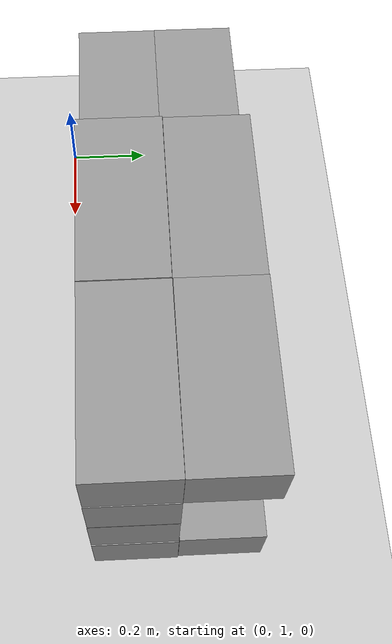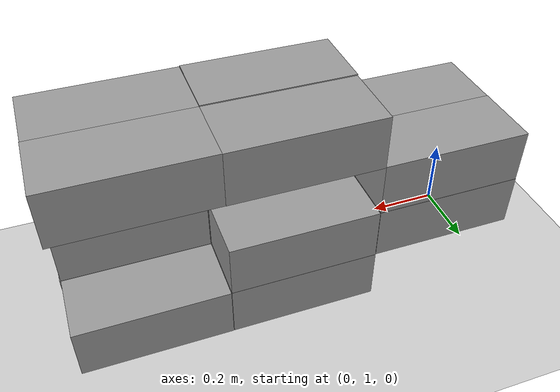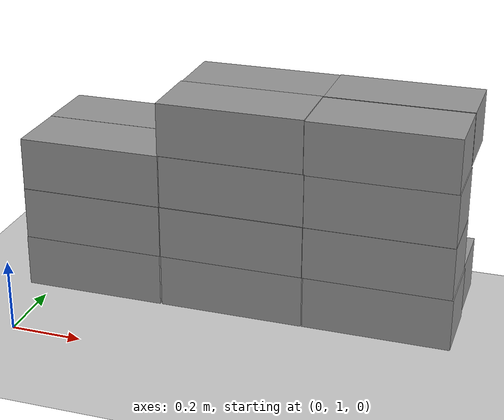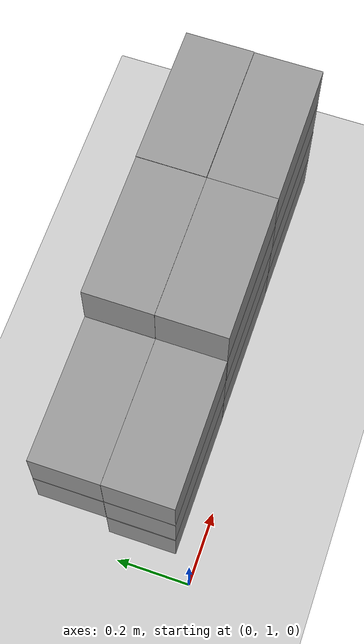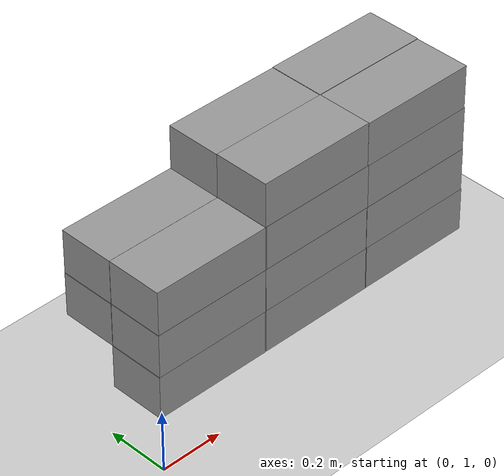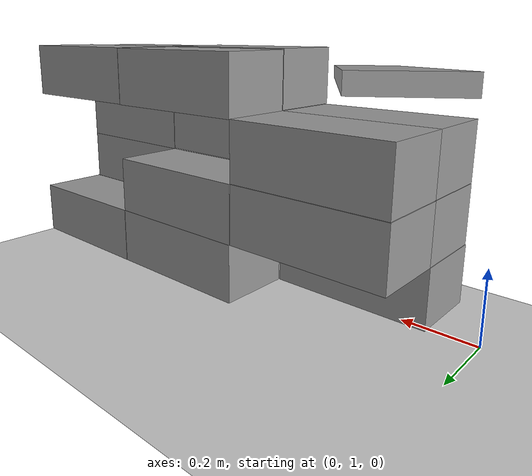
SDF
<sdf version="1.7">
 <world name="default">
  <model name="ground_plane">
   <static>1</static>
   <link name="link">
    <collision name="collision">
     <geometry><plane><normal>0 0 1</normal><size>100 100</size></plane></geometry>
     <surface>
      <contact><collide_bitmask>65535</collide_bitmask></contact>
      <friction><ode><mu>100</mu><mu2>50</mu2></ode></friction>
     </surface>
    </collision>
    <visual name="visual">
     <cast_shadows>0</cast_shadows>
     <geometry><plane><normal>0 0 1</normal><size>100 100</size></plane></geometry>
     <material>
      <script><uri>file://media/materials/scripts/gazebo.material</uri><name>Gazebo/Grey</name></script>
     </material>
    </visual>
   </link>
  </model>
  <model name="box_38_18_14">
   <link name="link_0">
    <inertial>
     <mass>2.5</mass>
     <inertia>
      <ixx>0.0108332</ixx>
      <ixy>0</ixy>
      <ixz>0</ixz>
      <iyy>0.0341665</iyy>
      <iyz>0</iyz>
      <izz>0.0368332</izz>
     </inertia>
    </inertial>
    <visual name="visual">
     <geometry><box><size>0.38 0.18 0.14</size></box></geometry>
     <material>
      <lighting>1</lighting>
      <script><uri>file://media/materials/scripts/gazebo.material</uri><name>Gazebo/Grey</name></script>
      <shader type="pixel"><normal_map>__default__</normal_map></shader>
      <ambient>0.3 0.3 0.3 1</ambient>
      <diffuse>0.7 0.7 0.7 1</diffuse>
      <specular>0.01 0.01 0.01 1</specular>
      <emissive>0 0 0 1</emissive>
     </material>
    </visual>
    <collision name="collision">
     <geometry><box><size>0.38 0.18 0.14</size></box></geometry>
     <surface>
      <friction>
       <ode><mu>0.6</mu><mu2>0.6</mu2><fdir1>0 0 0</fdir1><slip1>0</slip1><slip2>0</slip2></ode>
       <torsional>
        <coefficient>1</coefficient>
        <patch_radius>0</patch_radius>
        <surface_radius>0</surface_radius>
        <use_patch_radius>1</use_patch_radius>
        <ode><slip>0</slip></ode>
       </torsional>
      </friction>
      <bounce><restitution_coefficient>0</restitution_coefficient><threshold>1e+06</threshold></bounce>
      <contact>
       <collide_without_contact>0</collide_without_contact>
       <collide_without_contact_bitmask>1</collide_without_contact_bitmask>
       <collide_bitmask>1</collide_bitmask>
       <ode>
        <soft_cfm>0</soft_cfm>
        <soft_erp>0.2</soft_erp>
        <kp>1e+13</kp>
        <kd>1</kd>
        <max_vel>0.01</max_vel>
        <min_depth>0.01</min_depth>
       </ode>
       <bullet>
        <split_impulse>1</split_impulse>
        <split_impulse_penetration_threshold>-0.01</split_impulse_penetration_threshold>
        <soft_cfm>0</soft_cfm>
        <soft_erp>0.2</soft_erp>
        <kp>1e+13</kp>
        <kd>1</kd>
       </bullet>
      </contact>
     </surface>
    </collision>
   </link>
   <static>0</static>
   <pose>0.99069 1.1403 0.611576 0.000484 0.001138 0.001894</pose>
  </model>
  <model name="box_38_18_14_0">
   <link name="link_0">
    <inertial>
     <mass>2.5</mass>
     <inertia>
      <ixx>0.0108332</ixx>
      <ixy>0</ixy>
      <ixz>0</ixz>
      <iyy>0.0341665</iyy>
      <iyz>0</iyz>
      <izz>0.0368332</izz>
     </inertia>
    </inertial>
    <visual name="visual">
     <geometry><box><size>0.38 0.18 0.14</size></box></geometry>
     <material>
      <lighting>1</lighting>
      <script><uri>file://media/materials/scripts/gazebo.material</uri><name>Gazebo/Grey</name></script>
      <shader type="pixel"><normal_map>__default__</normal_map></shader>
      <ambient>0.3 0.3 0.3 1</ambient>
      <diffuse>0.7 0.7 0.7 1</diffuse>
      <specular>0.01 0.01 0.01 1</specular>
      <emissive>0 0 0 1</emissive>
     </material>
    </visual>
    <collision name="collision">
     <geometry><box><size>0.38 0.18 0.14</size></box></geometry>
     <surface>
      <friction>
       <ode><mu>0.6</mu><mu2>0.6</mu2><fdir1>0 0 0</fdir1><slip1>0</slip1><slip2>0</slip2></ode>
       <torsional>
        <coefficient>1</coefficient>
        <patch_radius>0</patch_radius>
        <surface_radius>0</surface_radius>
        <use_patch_radius>1</use_patch_radius>
        <ode><slip>0</slip></ode>
       </torsional>
      </friction>
      <bounce><restitution_coefficient>0</restitution_coefficient><threshold>1e+06</threshold></bounce>
      <contact>
       <collide_without_contact>0</collide_without_contact>
       <collide_without_contact_bitmask>1</collide_without_contact_bitmask>
       <collide_bitmask>1</collide_bitmask>
       <ode>
        <soft_cfm>0</soft_cfm>
        <soft_erp>0.2</soft_erp>
        <kp>1e+13</kp>
        <kd>1</kd>
        <max_vel>0.01</max_vel>
        <min_depth>0.01</min_depth>
       </ode>
       <bullet>
        <split_impulse>1</split_impulse>
        <split_impulse_penetration_threshold>-0.01</split_impulse_penetration_threshold>
        <soft_cfm>0</soft_cfm>
        <soft_erp>0.2</soft_erp>
        <kp>1e+13</kp>
        <kd>1</kd>
       </bullet>
      </contact>
     </surface>
    </collision>
   </link>
   <static>0</static>
   <pose>0.610372 1.13954 0.614013 0.0002 0.000296 0.000292</pose>
  </model>
  <model name="box_38_18_14_1">
   <link name="link_0">
    <inertial>
     <mass>2.5</mass>
     <inertia>
      <ixx>0.0108332</ixx>
      <ixy>0</ixy>
      <ixz>0</ixz>
      <iyy>0.0341665</iyy>
      <iyz>0</iyz>
      <izz>0.0368332</izz>
     </inertia>
    </inertial>
    <visual name="visual">
     <geometry><box><size>0.38 0.18 0.14</size></box></geometry>
     <material>
      <lighting>1</lighting>
      <script><uri>file://media/materials/scripts/gazebo.material</uri><name>Gazebo/Grey</name></script>
      <shader type="pixel"><normal_map>__default__</normal_map></shader>
      <ambient>0.3 0.3 0.3 1</ambient>
      <diffuse>0.7 0.7 0.7 1</diffuse>
      <specular>0.01 0.01 0.01 1</specular>
      <emissive>0 0 0 1</emissive>
     </material>
    </visual>
    <collision name="collision">
     <geometry><box><size>0.38 0.18 0.14</size></box></geometry>
     <surface>
      <friction>
       <ode><mu>0.6</mu><mu2>0.6</mu2><fdir1>0 0 0</fdir1><slip1>0</slip1><slip2>0</slip2></ode>
       <torsional>
        <coefficient>1</coefficient>
        <patch_radius>0</patch_radius>
        <surface_radius>0</surface_radius>
        <use_patch_radius>1</use_patch_radius>
        <ode><slip>0</slip></ode>
       </torsional>
      </friction>
      <bounce><restitution_coefficient>0</restitution_coefficient><threshold>1e+06</threshold></bounce>
      <contact>
       <collide_without_contact>0</collide_without_contact>
       <collide_without_contact_bitmask>1</collide_without_contact_bitmask>
       <collide_bitmask>1</collide_bitmask>
       <ode>
        <soft_cfm>0</soft_cfm>
        <soft_erp>0.2</soft_erp>
        <kp>1e+13</kp>
        <kd>1</kd>
        <max_vel>0.01</max_vel>
        <min_depth>0.01</min_depth>
       </ode>
       <bullet>
        <split_impulse>1</split_impulse>
        <split_impulse_penetration_threshold>-0.01</split_impulse_penetration_threshold>
        <soft_cfm>0</soft_cfm>
        <soft_erp>0.2</soft_erp>
        <kp>1e+13</kp>
        <kd>1</kd>
       </bullet>
      </contact>
     </surface>
    </collision>
   </link>
   <static>1</static>
   <pose>0.995595 1.14055 0.192003 -2.4e-05 -3.2e-05 -0.000547</pose>
  </model>
  <model name="box_38_18_14_2">
   <link name="link_0">
    <inertial>
     <mass>2.5</mass>
     <inertia>
      <ixx>0.0108332</ixx>
      <ixy>0</ixy>
      <ixz>0</ixz>
      <iyy>0.0341665</iyy>
      <iyz>0</iyz>
      <izz>0.0368332</izz>
     </inertia>
    </inertial>
    <visual name="visual">
     <geometry><box><size>0.38 0.18 0.14</size></box></geometry>
     <material>
      <lighting>1</lighting>
      <script><uri>file://media/materials/scripts/gazebo.material</uri><name>Gazebo/Grey</name></script>
      <shader type="pixel"><normal_map>__default__</normal_map></shader>
      <ambient>0.3 0.3 0.3 1</ambient>
      <diffuse>0.7 0.7 0.7 1</diffuse>
      <specular>0.01 0.01 0.01 1</specular>
      <emissive>0 0 0 1</emissive>
     </material>
    </visual>
    <collision name="collision">
     <geometry><box><size>0.38 0.18 0.14</size></box></geometry>
     <surface>
      <friction>
       <ode><mu>0.6</mu><mu2>0.6</mu2><fdir1>0 0 0</fdir1><slip1>0</slip1><slip2>0</slip2></ode>
       <torsional>
        <coefficient>1</coefficient>
        <patch_radius>0</patch_radius>
        <surface_radius>0</surface_radius>
        <use_patch_radius>1</use_patch_radius>
        <ode><slip>0</slip></ode>
       </torsional>
      </friction>
      <bounce><restitution_coefficient>0</restitution_coefficient><threshold>1e+06</threshold></bounce>
      <contact>
       <collide_without_contact>0</collide_without_contact>
       <collide_without_contact_bitmask>1</collide_without_contact_bitmask>
       <collide_bitmask>1</collide_bitmask>
       <ode>
        <soft_cfm>0</soft_cfm>
        <soft_erp>0.2</soft_erp>
        <kp>1e+13</kp>
        <kd>1</kd>
        <max_vel>0.01</max_vel>
        <min_depth>0.01</min_depth>
       </ode>
       <bullet>
        <split_impulse>1</split_impulse>
        <split_impulse_penetration_threshold>-0.01</split_impulse_penetration_threshold>
        <soft_cfm>0</soft_cfm>
        <soft_erp>0.2</soft_erp>
        <kp>1e+13</kp>
        <kd>1</kd>
       </bullet>
      </contact>
     </surface>
    </collision>
   </link>
   <static>1</static>
   <pose>0.612926 1.14008 0.191991 3.5e-05 -1.8e-05 0.000435</pose>
  </model>
  <model name="box_38_18_14_3">
   <link name="link_0">
    <inertial>
     <mass>2.5</mass>
     <inertia>
      <ixx>0.0108332</ixx>
      <ixy>0</ixy>
      <ixz>0</ixz>
      <iyy>0.0341665</iyy>
      <iyz>0</iyz>
      <izz>0.0368332</izz>
     </inertia>
    </inertial>
    <visual name="visual">
     <geometry><box><size>0.38 0.18 0.14</size></box></geometry>
     <material>
      <lighting>1</lighting>
      <script><uri>file://media/materials/scripts/gazebo.material</uri><name>Gazebo/Grey</name></script>
      <shader type="pixel"><normal_map>__default__</normal_map></shader>
      <ambient>0.3 0.3 0.3 1</ambient>
      <diffuse>0.7 0.7 0.7 1</diffuse>
      <specular>0.01 0.01 0.01 1</specular>
      <emissive>0 0 0 1</emissive>
     </material>
    </visual>
    <collision name="collision">
     <geometry><box><size>0.38 0.18 0.14</size></box></geometry>
     <surface>
      <friction>
       <ode><mu>0.6</mu><mu2>0.6</mu2><fdir1>0 0 0</fdir1><slip1>0</slip1><slip2>0</slip2></ode>
       <torsional>
        <coefficient>1</coefficient>
        <patch_radius>0</patch_radius>
        <surface_radius>0</surface_radius>
        <use_patch_radius>1</use_patch_radius>
        <ode><slip>0</slip></ode>
       </torsional>
      </friction>
      <bounce><restitution_coefficient>0</restitution_coefficient><threshold>1e+06</threshold></bounce>
      <contact>
       <collide_without_contact>0</collide_without_contact>
       <collide_without_contact_bitmask>1</collide_without_contact_bitmask>
       <collide_bitmask>1</collide_bitmask>
       <ode>
        <soft_cfm>0</soft_cfm>
        <soft_erp>0.2</soft_erp>
        <kp>1e+13</kp>
        <kd>1</kd>
        <max_vel>0.01</max_vel>
        <min_depth>0.01</min_depth>
       </ode>
       <bullet>
        <split_impulse>1</split_impulse>
        <split_impulse_penetration_threshold>-0.01</split_impulse_penetration_threshold>
        <soft_cfm>0</soft_cfm>
        <soft_erp>0.2</soft_erp>
        <kp>1e+13</kp>
        <kd>1</kd>
       </bullet>
      </contact>
     </surface>
    </collision>
   </link>
   <static>1</static>
   <pose>0.229172 1.13951 0.191983 2.7e-05 -2e-05 5e-06</pose>
  </model>
  <model name="box_38_18_14_4">
   <link name="link_0">
    <inertial>
     <mass>2.5</mass>
     <inertia>
      <ixx>0.0108332</ixx>
      <ixy>0</ixy>
      <ixz>0</ixz>
      <iyy>0.0341665</iyy>
      <iyz>0</iyz>
      <izz>0.0368332</izz>
     </inertia>
    </inertial>
    <visual name="visual">
     <geometry><box><size>0.38 0.18 0.14</size></box></geometry>
     <material>
      <lighting>1</lighting>
      <script><uri>file://media/materials/scripts/gazebo.material</uri><name>Gazebo/Grey</name></script>
      <shader type="pixel"><normal_map>__default__</normal_map></shader>
      <ambient>0.3 0.3 0.3 1</ambient>
      <diffuse>0.7 0.7 0.7 1</diffuse>
      <specular>0.01 0.01 0.01 1</specular>
      <emissive>0 0 0 1</emissive>
     </material>
    </visual>
    <collision name="collision">
     <geometry><box><size>0.38 0.18 0.14</size></box></geometry>
     <surface>
      <friction>
       <ode><mu>0.6</mu><mu2>0.6</mu2><fdir1>0 0 0</fdir1><slip1>0</slip1><slip2>0</slip2></ode>
       <torsional>
        <coefficient>1</coefficient>
        <patch_radius>0</patch_radius>
        <surface_radius>0</surface_radius>
        <use_patch_radius>1</use_patch_radius>
        <ode><slip>0</slip></ode>
       </torsional>
      </friction>
      <bounce><restitution_coefficient>0</restitution_coefficient><threshold>1e+06</threshold></bounce>
      <contact>
       <collide_without_contact>0</collide_without_contact>
       <collide_without_contact_bitmask>1</collide_without_contact_bitmask>
       <collide_bitmask>1</collide_bitmask>
       <ode>
        <soft_cfm>0</soft_cfm>
        <soft_erp>0.2</soft_erp>
        <kp>1e+13</kp>
        <kd>1</kd>
        <max_vel>0.01</max_vel>
        <min_depth>0.01</min_depth>
       </ode>
       <bullet>
        <split_impulse>1</split_impulse>
        <split_impulse_penetration_threshold>-0.01</split_impulse_penetration_threshold>
        <soft_cfm>0</soft_cfm>
        <soft_erp>0.2</soft_erp>
        <kp>1e+13</kp>
        <kd>1</kd>
       </bullet>
      </contact>
     </surface>
    </collision>
   </link>
   <static>1</static>
   <pose>0.992564 1.32147 0.192009 -2.4e-05 -1.9e-05 -1.8e-05</pose>
  </model>
  <model name="box_38_18_14_5">
   <link name="link_0">
    <inertial>
     <mass>2.5</mass>
     <inertia>
      <ixx>0.0108332</ixx>
      <ixy>0</ixy>
      <ixz>0</ixz>
      <iyy>0.0341665</iyy>
      <iyz>0</iyz>
      <izz>0.0368332</izz>
     </inertia>
    </inertial>
    <visual name="visual">
     <geometry><box><size>0.38 0.18 0.14</size></box></geometry>
     <material>
      <lighting>1</lighting>
      <script><uri>file://media/materials/scripts/gazebo.material</uri><name>Gazebo/Grey</name></script>
      <shader type="pixel"><normal_map>__default__</normal_map></shader>
      <ambient>0.3 0.3 0.3 1</ambient>
      <diffuse>0.7 0.7 0.7 1</diffuse>
      <specular>0.01 0.01 0.01 1</specular>
      <emissive>0 0 0 1</emissive>
     </material>
    </visual>
    <collision name="collision">
     <geometry><box><size>0.38 0.18 0.14</size></box></geometry>
     <surface>
      <friction>
       <ode><mu>0.6</mu><mu2>0.6</mu2><fdir1>0 0 0</fdir1><slip1>0</slip1><slip2>0</slip2></ode>
       <torsional>
        <coefficient>1</coefficient>
        <patch_radius>0</patch_radius>
        <surface_radius>0</surface_radius>
        <use_patch_radius>1</use_patch_radius>
        <ode><slip>0</slip></ode>
       </torsional>
      </friction>
      <bounce><restitution_coefficient>0</restitution_coefficient><threshold>1e+06</threshold></bounce>
      <contact>
       <collide_without_contact>0</collide_without_contact>
       <collide_without_contact_bitmask>1</collide_without_contact_bitmask>
       <collide_bitmask>1</collide_bitmask>
       <ode>
        <soft_cfm>0</soft_cfm>
        <soft_erp>0.2</soft_erp>
        <kp>1e+13</kp>
        <kd>1</kd>
        <max_vel>0.01</max_vel>
        <min_depth>0.01</min_depth>
       </ode>
       <bullet>
        <split_impulse>1</split_impulse>
        <split_impulse_penetration_threshold>-0.01</split_impulse_penetration_threshold>
        <soft_cfm>0</soft_cfm>
        <soft_erp>0.2</soft_erp>
        <kp>1e+13</kp>
        <kd>1</kd>
       </bullet>
      </contact>
     </surface>
    </collision>
   </link>
   <static>1</static>
   <pose>0.61137 1.32116 0.191996 -1e-06 -2.4e-05 -0.000217</pose>
  </model>
  <model name="box_38_18_14_13">
   <link name="link_0">
    <inertial>
     <mass>2.5</mass>
     <inertia>
      <ixx>0.0108332</ixx>
      <ixy>0</ixy>
      <ixz>0</ixz>
      <iyy>0.0341665</iyy>
      <iyz>0</iyz>
      <izz>0.0368332</izz>
     </inertia>
    </inertial>
    <visual name="visual">
     <geometry><box><size>0.38 0.18 0.14</size></box></geometry>
     <material>
      <lighting>1</lighting>
      <script><uri>file://media/materials/scripts/gazebo.material</uri><name>Gazebo/Grey</name></script>
      <shader type="pixel"><normal_map>__default__</normal_map></shader>
      <ambient>0.3 0.3 0.3 1</ambient>
      <diffuse>0.7 0.7 0.7 1</diffuse>
      <specular>0.01 0.01 0.01 1</specular>
      <emissive>0 0 0 1</emissive>
     </material>
    </visual>
    <collision name="collision">
     <geometry><box><size>0.38 0.18 0.14</size></box></geometry>
     <surface>
      <friction>
       <ode><mu>0.6</mu><mu2>0.6</mu2><fdir1>0 0 0</fdir1><slip1>0</slip1><slip2>0</slip2></ode>
       <torsional>
        <coefficient>1</coefficient>
        <patch_radius>0</patch_radius>
        <surface_radius>0</surface_radius>
        <use_patch_radius>1</use_patch_radius>
        <ode><slip>0</slip></ode>
       </torsional>
      </friction>
      <bounce><restitution_coefficient>0</restitution_coefficient><threshold>1e+06</threshold></bounce>
      <contact>
       <collide_without_contact>0</collide_without_contact>
       <collide_without_contact_bitmask>1</collide_without_contact_bitmask>
       <collide_bitmask>1</collide_bitmask>
       <ode>
        <soft_cfm>0</soft_cfm>
        <soft_erp>0.2</soft_erp>
        <kp>1e+13</kp>
        <kd>1</kd>
        <max_vel>0.01</max_vel>
        <min_depth>0.01</min_depth>
       </ode>
       <bullet>
        <split_impulse>1</split_impulse>
        <split_impulse_penetration_threshold>-0.01</split_impulse_penetration_threshold>
        <soft_cfm>0</soft_cfm>
        <soft_erp>0.2</soft_erp>
        <kp>1e+13</kp>
        <kd>1</kd>
       </bullet>
      </contact>
     </surface>
    </collision>
   </link>
   <static>1</static>
   <pose>0.993083 1.13999 0.33195 0.000539 -3.4e-05 7.4e-05</pose>
  </model>
  <model name="box_38_18_14_14">
   <link name="link_0">
    <inertial>
     <mass>2.5</mass>
     <inertia>
      <ixx>0.0108332</ixx>
      <ixy>0</ixy>
      <ixz>0</ixz>
      <iyy>0.0341665</iyy>
      <iyz>0</iyz>
      <izz>0.0368332</izz>
     </inertia>
    </inertial>
    <visual name="visual">
     <geometry><box><size>0.38 0.18 0.14</size></box></geometry>
     <material>
      <lighting>1</lighting>
      <script><uri>file://media/materials/scripts/gazebo.material</uri><name>Gazebo/Grey</name></script>
      <shader type="pixel"><normal_map>__default__</normal_map></shader>
      <ambient>0.3 0.3 0.3 1</ambient>
      <diffuse>0.7 0.7 0.7 1</diffuse>
      <specular>0.01 0.01 0.01 1</specular>
      <emissive>0 0 0 1</emissive>
     </material>
    </visual>
    <collision name="collision">
     <geometry><box><size>0.38 0.18 0.14</size></box></geometry>
     <surface>
      <friction>
       <ode><mu>0.6</mu><mu2>0.6</mu2><fdir1>0 0 0</fdir1><slip1>0</slip1><slip2>0</slip2></ode>
       <torsional>
        <coefficient>1</coefficient>
        <patch_radius>0</patch_radius>
        <surface_radius>0</surface_radius>
        <use_patch_radius>1</use_patch_radius>
        <ode><slip>0</slip></ode>
       </torsional>
      </friction>
      <bounce><restitution_coefficient>0</restitution_coefficient><threshold>1e+06</threshold></bounce>
      <contact>
       <collide_without_contact>0</collide_without_contact>
       <collide_without_contact_bitmask>1</collide_without_contact_bitmask>
       <collide_bitmask>1</collide_bitmask>
       <ode>
        <soft_cfm>0</soft_cfm>
        <soft_erp>0.2</soft_erp>
        <kp>1e+13</kp>
        <kd>1</kd>
        <max_vel>0.01</max_vel>
        <min_depth>0.01</min_depth>
       </ode>
       <bullet>
        <split_impulse>1</split_impulse>
        <split_impulse_penetration_threshold>-0.01</split_impulse_penetration_threshold>
        <soft_cfm>0</soft_cfm>
        <soft_erp>0.2</soft_erp>
        <kp>1e+13</kp>
        <kd>1</kd>
       </bullet>
      </contact>
     </surface>
    </collision>
   </link>
   <static>1</static>
   <pose>0.612096 1.13996 0.331957 0.000133 0.00021 -0.000244</pose>
  </model>
  <model name="box_38_18_14_15">
   <link name="link_0">
    <inertial>
     <mass>2.5</mass>
     <inertia>
      <ixx>0.0108332</ixx>
      <ixy>0</ixy>
      <ixz>0</ixz>
      <iyy>0.0341665</iyy>
      <iyz>0</iyz>
      <izz>0.0368332</izz>
     </inertia>
    </inertial>
    <visual name="visual">
     <geometry><box><size>0.38 0.18 0.14</size></box></geometry>
     <material>
      <lighting>1</lighting>
      <script><uri>file://media/materials/scripts/gazebo.material</uri><name>Gazebo/Grey</name></script>
      <shader type="pixel"><normal_map>__default__</normal_map></shader>
      <ambient>0.3 0.3 0.3 1</ambient>
      <diffuse>0.7 0.7 0.7 1</diffuse>
      <specular>0.01 0.01 0.01 1</specular>
      <emissive>0 0 0 1</emissive>
     </material>
    </visual>
    <collision name="collision">
     <geometry><box><size>0.38 0.18 0.14</size></box></geometry>
     <surface>
      <friction>
       <ode><mu>0.6</mu><mu2>0.6</mu2><fdir1>0 0 0</fdir1><slip1>0</slip1><slip2>0</slip2></ode>
       <torsional>
        <coefficient>1</coefficient>
        <patch_radius>0</patch_radius>
        <surface_radius>0</surface_radius>
        <use_patch_radius>1</use_patch_radius>
        <ode><slip>0</slip></ode>
       </torsional>
      </friction>
      <bounce><restitution_coefficient>0</restitution_coefficient><threshold>1e+06</threshold></bounce>
      <contact>
       <collide_without_contact>0</collide_without_contact>
       <collide_without_contact_bitmask>1</collide_without_contact_bitmask>
       <collide_bitmask>1</collide_bitmask>
       <ode>
        <soft_cfm>0</soft_cfm>
        <soft_erp>0.2</soft_erp>
        <kp>1e+13</kp>
        <kd>1</kd>
        <max_vel>0.01</max_vel>
        <min_depth>0.01</min_depth>
       </ode>
       <bullet>
        <split_impulse>1</split_impulse>
        <split_impulse_penetration_threshold>-0.01</split_impulse_penetration_threshold>
        <soft_cfm>0</soft_cfm>
        <soft_erp>0.2</soft_erp>
        <kp>1e+13</kp>
        <kd>1</kd>
       </bullet>
      </contact>
     </surface>
    </collision>
   </link>
   <static>1</static>
   <pose>0.230627 1.13961 0.331973 3e-05 -6.7e-05 6.3e-05</pose>
  </model>
  <model name="box_38_18_14_16">
   <link name="link_0">
    <inertial>
     <mass>2.5</mass>
     <inertia>
      <ixx>0.0108332</ixx>
      <ixy>0</ixy>
      <ixz>0</ixz>
      <iyy>0.0341665</iyy>
      <iyz>0</iyz>
      <izz>0.0368332</izz>
     </inertia>
    </inertial>
    <visual name="visual">
     <geometry><box><size>0.38 0.18 0.14</size></box></geometry>
     <material>
      <lighting>1</lighting>
      <script><uri>file://media/materials/scripts/gazebo.material</uri><name>Gazebo/Grey</name></script>
      <shader type="pixel"><normal_map>__default__</normal_map></shader>
      <ambient>0.3 0.3 0.3 1</ambient>
      <diffuse>0.7 0.7 0.7 1</diffuse>
      <specular>0.01 0.01 0.01 1</specular>
      <emissive>0 0 0 1</emissive>
     </material>
    </visual>
    <collision name="collision">
     <geometry><box><size>0.38 0.18 0.14</size></box></geometry>
     <surface>
      <friction>
       <ode><mu>0.6</mu><mu2>0.6</mu2><fdir1>0 0 0</fdir1><slip1>0</slip1><slip2>0</slip2></ode>
       <torsional>
        <coefficient>1</coefficient>
        <patch_radius>0</patch_radius>
        <surface_radius>0</surface_radius>
        <use_patch_radius>1</use_patch_radius>
        <ode><slip>0</slip></ode>
       </torsional>
      </friction>
      <bounce><restitution_coefficient>0</restitution_coefficient><threshold>1e+06</threshold></bounce>
      <contact>
       <collide_without_contact>0</collide_without_contact>
       <collide_without_contact_bitmask>1</collide_without_contact_bitmask>
       <collide_bitmask>1</collide_bitmask>
       <ode>
        <soft_cfm>0</soft_cfm>
        <soft_erp>0.2</soft_erp>
        <kp>1e+13</kp>
        <kd>1</kd>
        <max_vel>0.01</max_vel>
        <min_depth>0.01</min_depth>
       </ode>
       <bullet>
        <split_impulse>1</split_impulse>
        <split_impulse_penetration_threshold>-0.01</split_impulse_penetration_threshold>
        <soft_cfm>0</soft_cfm>
        <soft_erp>0.2</soft_erp>
        <kp>1e+13</kp>
        <kd>1</kd>
       </bullet>
      </contact>
     </surface>
    </collision>
   </link>
   <static>1</static>
   <pose>0.229833 1.31971 0.33198 2.8e-05 -3e-06 -0.000162</pose>
  </model>
  <model name="box_38_18_14_17">
   <link name="link_0">
    <inertial>
     <mass>2.5</mass>
     <inertia>
      <ixx>0.0108332</ixx>
      <ixy>0</ixy>
      <ixz>0</ixz>
      <iyy>0.0341665</iyy>
      <iyz>0</iyz>
      <izz>0.0368332</izz>
     </inertia>
    </inertial>
    <visual name="visual">
     <geometry><box><size>0.38 0.18 0.14</size></box></geometry>
     <material>
      <lighting>1</lighting>
      <script><uri>file://media/materials/scripts/gazebo.material</uri><name>Gazebo/Grey</name></script>
      <shader type="pixel"><normal_map>__default__</normal_map></shader>
      <ambient>0.3 0.3 0.3 1</ambient>
      <diffuse>0.7 0.7 0.7 1</diffuse>
      <specular>0.01 0.01 0.01 1</specular>
      <emissive>0 0 0 1</emissive>
     </material>
    </visual>
    <collision name="collision">
     <geometry><box><size>0.38 0.18 0.14</size></box></geometry>
     <surface>
      <friction>
       <ode><mu>0.6</mu><mu2>0.6</mu2><fdir1>0 0 0</fdir1><slip1>0</slip1><slip2>0</slip2></ode>
       <torsional>
        <coefficient>1</coefficient>
        <patch_radius>0</patch_radius>
        <surface_radius>0</surface_radius>
        <use_patch_radius>1</use_patch_radius>
        <ode><slip>0</slip></ode>
       </torsional>
      </friction>
      <bounce><restitution_coefficient>0</restitution_coefficient><threshold>1e+06</threshold></bounce>
      <contact>
       <collide_without_contact>0</collide_without_contact>
       <collide_without_contact_bitmask>1</collide_without_contact_bitmask>
       <collide_bitmask>1</collide_bitmask>
       <ode>
        <soft_cfm>0</soft_cfm>
        <soft_erp>0.2</soft_erp>
        <kp>1e+13</kp>
        <kd>1</kd>
        <max_vel>0.01</max_vel>
        <min_depth>0.01</min_depth>
       </ode>
       <bullet>
        <split_impulse>1</split_impulse>
        <split_impulse_penetration_threshold>-0.01</split_impulse_penetration_threshold>
        <soft_cfm>0</soft_cfm>
        <soft_erp>0.2</soft_erp>
        <kp>1e+13</kp>
        <kd>1</kd>
       </bullet>
      </contact>
     </surface>
    </collision>
   </link>
   <static>1</static>
   <pose>0.611247 1.3206 0.33189 8.3e-05 -0.000105 -0.000245</pose>
  </model>
  <model name="transporter">
   <link name="link_0">
    <inertial>
     <mass>1.05863</mass>
     <inertia>
      <ixx>2.63027</ixx>
      <ixy>0</ixy>
      <ixz>0</ixz>
      <iyy>0.0914909</iyy>
      <iyz>0</iyz>
      <izz>2.71522</izz>
     </inertia>
    </inertial>
    <pose>0 0 -0 0.04625 -0 0</pose>
    <kinematic>1</kinematic>
    <visual name="visual">
     <geometry><box><size>1 5.45693 0.192575</size></box></geometry>
     <material>
      <lighting>1</lighting>
      <script><uri>file://media/materials/scripts/gazebo.material</uri><name>Gazebo/Grey</name></script>
      <shader type="pixel"><normal_map>__default__</normal_map></shader>
      <ambient>0.3 0.3 0.3 1</ambient>
      <diffuse>0.7 0.7 0.7 1</diffuse>
      <specular>0.01 0.01 0.01 1</specular>
      <emissive>0 0 0 1</emissive>
     </material>
    </visual>
    <collision name="collision">
     <geometry><box><size>1 5.45693 0.192575</size></box></geometry>
     <surface>
      <friction>
       <ode><mu>0</mu><mu2>3.46945e-18</mu2><fdir1>0 0 0</fdir1><slip1>0</slip1><slip2>0</slip2></ode>
       <torsional>
        <coefficient>1</coefficient>
        <patch_radius>0</patch_radius>
        <surface_radius>0</surface_radius>
        <use_patch_radius>1</use_patch_radius>
        <ode><slip>0</slip></ode>
       </torsional>
      </friction>
      <bounce><restitution_coefficient>0</restitution_coefficient><threshold>1e+06</threshold></bounce>
      <contact>
       <collide_without_contact>0</collide_without_contact>
       <collide_without_contact_bitmask>1</collide_without_contact_bitmask>
       <collide_bitmask>1</collide_bitmask>
       <ode>
        <soft_cfm>0</soft_cfm>
        <soft_erp>0.2</soft_erp>
        <kp>1e+13</kp>
        <kd>1</kd>
        <max_vel>0.01</max_vel>
        <min_depth>0</min_depth>
       </ode>
       <bullet>
        <split_impulse>1</split_impulse>
        <split_impulse_penetration_threshold>-0.01</split_impulse_penetration_threshold>
        <soft_cfm>0</soft_cfm>
        <soft_erp>0.2</soft_erp>
        <kp>1e+13</kp>
        <kd>1</kd>
       </bullet>
      </contact>
     </surface>
    </collision>
   </link>
   <static>1</static>
   <pose>3.04192 -3.96626 0.225869 0 -0 0.589007</pose>
  </model>
  <model name="box_38_18_14_27">
   <link name="link_0">
    <inertial>
     <mass>2.5</mass>
     <inertia>
      <ixx>0.0108332</ixx>
      <ixy>0</ixy>
      <ixz>0</ixz>
      <iyy>0.0341665</iyy>
      <iyz>0</iyz>
      <izz>0.0368332</izz>
     </inertia>
    </inertial>
    <visual name="visual">
     <geometry><box><size>0.38 0.18 0.14</size></box></geometry>
     <material>
      <lighting>1</lighting>
      <script><uri>file://media/materials/scripts/gazebo.material</uri><name>Gazebo/Grey</name></script>
      <shader type="pixel"><normal_map>__default__</normal_map></shader>
      <ambient>0.3 0.3 0.3 1</ambient>
      <diffuse>0.7 0.7 0.7 1</diffuse>
      <specular>0.01 0.01 0.01 1</specular>
      <emissive>0 0 0 1</emissive>
     </material>
    </visual>
    <collision name="collision">
     <geometry><box><size>0.38 0.18 0.14</size></box></geometry>
     <surface>
      <friction>
       <ode><mu>0.6</mu><mu2>0.6</mu2><fdir1>0 0 0</fdir1><slip1>0</slip1><slip2>0</slip2></ode>
       <torsional>
        <coefficient>1</coefficient>
        <patch_radius>0</patch_radius>
        <surface_radius>0</surface_radius>
        <use_patch_radius>1</use_patch_radius>
        <ode><slip>0</slip></ode>
       </torsional>
      </friction>
      <bounce><restitution_coefficient>0</restitution_coefficient><threshold>1e+06</threshold></bounce>
      <contact>
       <collide_without_contact>0</collide_without_contact>
       <collide_without_contact_bitmask>1</collide_without_contact_bitmask>
       <collide_bitmask>1</collide_bitmask>
       <ode>
        <soft_cfm>0</soft_cfm>
        <soft_erp>0.2</soft_erp>
        <kp>1e+13</kp>
        <kd>1</kd>
        <max_vel>0.01</max_vel>
        <min_depth>0.01</min_depth>
       </ode>
       <bullet>
        <split_impulse>1</split_impulse>
        <split_impulse_penetration_threshold>-0.01</split_impulse_penetration_threshold>
        <soft_cfm>0</soft_cfm>
        <soft_erp>0.2</soft_erp>
        <kp>1e+13</kp>
        <kd>1</kd>
       </bullet>
      </contact>
     </surface>
    </collision>
   </link>
   <static>1</static>
   <pose>0.992615 1.14049 0.472015 0 -0 0</pose>
  </model>
  <model name="box_38_18_14_28">
   <link name="link_0">
    <inertial>
     <mass>2.5</mass>
     <inertia>
      <ixx>0.0108332</ixx>
      <ixy>0</ixy>
      <ixz>0</ixz>
      <iyy>0.0341665</iyy>
      <iyz>0</iyz>
      <izz>0.0368332</izz>
     </inertia>
    </inertial>
    <visual name="visual">
     <geometry><box><size>0.38 0.18 0.14</size></box></geometry>
     <material>
      <lighting>1</lighting>
      <script><uri>file://media/materials/scripts/gazebo.material</uri><name>Gazebo/Grey</name></script>
      <shader type="pixel"><normal_map>__default__</normal_map></shader>
      <ambient>0.3 0.3 0.3 1</ambient>
      <diffuse>0.7 0.7 0.7 1</diffuse>
      <specular>0.01 0.01 0.01 1</specular>
      <emissive>0 0 0 1</emissive>
     </material>
    </visual>
    <collision name="collision">
     <geometry><box><size>0.38 0.18 0.14</size></box></geometry>
     <surface>
      <friction>
       <ode><mu>0.6</mu><mu2>0.6</mu2><fdir1>0 0 0</fdir1><slip1>0</slip1><slip2>0</slip2></ode>
       <torsional>
        <coefficient>1</coefficient>
        <patch_radius>0</patch_radius>
        <surface_radius>0</surface_radius>
        <use_patch_radius>1</use_patch_radius>
        <ode><slip>0</slip></ode>
       </torsional>
      </friction>
      <bounce><restitution_coefficient>0</restitution_coefficient><threshold>1e+06</threshold></bounce>
      <contact>
       <collide_without_contact>0</collide_without_contact>
       <collide_without_contact_bitmask>1</collide_without_contact_bitmask>
       <collide_bitmask>1</collide_bitmask>
       <ode>
        <soft_cfm>0</soft_cfm>
        <soft_erp>0.2</soft_erp>
        <kp>1e+13</kp>
        <kd>1</kd>
        <max_vel>0.01</max_vel>
        <min_depth>0.01</min_depth>
       </ode>
       <bullet>
        <split_impulse>1</split_impulse>
        <split_impulse_penetration_threshold>-0.01</split_impulse_penetration_threshold>
        <soft_cfm>0</soft_cfm>
        <soft_erp>0.2</soft_erp>
        <kp>1e+13</kp>
        <kd>1</kd>
       </bullet>
      </contact>
     </surface>
    </collision>
   </link>
   <static>1</static>
   <pose>0.613326 1.13899 0.473719 0 -0 0</pose>
  </model>
  <model name="box_38_18_14_29">
   <link name="link_0">
    <inertial>
     <mass>2.5</mass>
     <inertia>
      <ixx>0.0108332</ixx>
      <ixy>0</ixy>
      <ixz>0</ixz>
      <iyy>0.0341665</iyy>
      <iyz>0</iyz>
      <izz>0.0368332</izz>
     </inertia>
    </inertial>
    <visual name="visual">
     <geometry><box><size>0.38 0.18 0.14</size></box></geometry>
     <material>
      <lighting>1</lighting>
      <script><uri>file://media/materials/scripts/gazebo.material</uri><name>Gazebo/Grey</name></script>
      <shader type="pixel"><normal_map>__default__</normal_map></shader>
      <ambient>0.3 0.3 0.3 1</ambient>
      <diffuse>0.7 0.7 0.7 1</diffuse>
      <specular>0.01 0.01 0.01 1</specular>
      <emissive>0 0 0 1</emissive>
     </material>
    </visual>
    <collision name="collision">
     <geometry><box><size>0.38 0.18 0.14</size></box></geometry>
     <surface>
      <friction>
       <ode><mu>0.6</mu><mu2>0.6</mu2><fdir1>0 0 0</fdir1><slip1>0</slip1><slip2>0</slip2></ode>
       <torsional>
        <coefficient>1</coefficient>
        <patch_radius>0</patch_radius>
        <surface_radius>0</surface_radius>
        <use_patch_radius>1</use_patch_radius>
        <ode><slip>0</slip></ode>
       </torsional>
      </friction>
      <bounce><restitution_coefficient>0</restitution_coefficient><threshold>1e+06</threshold></bounce>
      <contact>
       <collide_without_contact>0</collide_without_contact>
       <collide_without_contact_bitmask>1</collide_without_contact_bitmask>
       <collide_bitmask>1</collide_bitmask>
       <ode>
        <soft_cfm>0</soft_cfm>
        <soft_erp>0.2</soft_erp>
        <kp>1e+13</kp>
        <kd>1</kd>
        <max_vel>0.01</max_vel>
        <min_depth>0.01</min_depth>
       </ode>
       <bullet>
        <split_impulse>1</split_impulse>
        <split_impulse_penetration_threshold>-0.01</split_impulse_penetration_threshold>
        <soft_cfm>0</soft_cfm>
        <soft_erp>0.2</soft_erp>
        <kp>1e+13</kp>
        <kd>1</kd>
       </bullet>
      </contact>
     </surface>
    </collision>
   </link>
   <static>1</static>
   <pose>0.231044 1.13959 0.472766 0 -0 0</pose>
  </model>
  <model name="box_38_18_14_30">
   <link name="link_0">
    <inertial>
     <mass>2.5</mass>
     <inertia>
      <ixx>0.0108332</ixx>
      <ixy>0</ixy>
      <ixz>0</ixz>
      <iyy>0.0341665</iyy>
      <iyz>0</iyz>
      <izz>0.0368332</izz>
     </inertia>
    </inertial>
    <visual name="visual">
     <geometry><box><size>0.38 0.18 0.14</size></box></geometry>
     <material>
      <lighting>1</lighting>
      <script><uri>file://media/materials/scripts/gazebo.material</uri><name>Gazebo/Grey</name></script>
      <shader type="pixel"><normal_map>__default__</normal_map></shader>
      <ambient>0.3 0.3 0.3 1</ambient>
      <diffuse>0.7 0.7 0.7 1</diffuse>
      <specular>0.01 0.01 0.01 1</specular>
      <emissive>0 0 0 1</emissive>
     </material>
    </visual>
    <collision name="collision">
     <geometry><box><size>0.38 0.18 0.14</size></box></geometry>
     <surface>
      <friction>
       <ode><mu>0.6</mu><mu2>0.6</mu2><fdir1>0 0 0</fdir1><slip1>0</slip1><slip2>0</slip2></ode>
       <torsional>
        <coefficient>1</coefficient>
        <patch_radius>0</patch_radius>
        <surface_radius>0</surface_radius>
        <use_patch_radius>1</use_patch_radius>
        <ode><slip>0</slip></ode>
       </torsional>
      </friction>
      <bounce><restitution_coefficient>0</restitution_coefficient><threshold>1e+06</threshold></bounce>
      <contact>
       <collide_without_contact>0</collide_without_contact>
       <collide_without_contact_bitmask>1</collide_without_contact_bitmask>
       <collide_bitmask>1</collide_bitmask>
       <ode>
        <soft_cfm>0</soft_cfm>
        <soft_erp>0.2</soft_erp>
        <kp>1e+13</kp>
        <kd>1</kd>
        <max_vel>0.01</max_vel>
        <min_depth>0.01</min_depth>
       </ode>
       <bullet>
        <split_impulse>1</split_impulse>
        <split_impulse_penetration_threshold>-0.01</split_impulse_penetration_threshold>
        <soft_cfm>0</soft_cfm>
        <soft_erp>0.2</soft_erp>
        <kp>1e+13</kp>
        <kd>1</kd>
       </bullet>
      </contact>
     </surface>
    </collision>
   </link>
   <static>1</static>
   <pose>0.230465 1.31957 0.472927 0 -0 0</pose>
  </model>
  <model name="box_38_18_14_31">
   <link name="link_0">
    <inertial>
     <mass>2.5</mass>
     <inertia>
      <ixx>0.0108332</ixx>
      <ixy>0</ixy>
      <ixz>0</ixz>
      <iyy>0.0341665</iyy>
      <iyz>0</iyz>
      <izz>0.0368332</izz>
     </inertia>
    </inertial>
    <visual name="visual">
     <geometry><box><size>0.38 0.18 0.14</size></box></geometry>
     <material>
      <lighting>1</lighting>
      <script><uri>file://media/materials/scripts/gazebo.material</uri><name>Gazebo/Grey</name></script>
      <shader type="pixel"><normal_map>__default__</normal_map></shader>
      <ambient>0.3 0.3 0.3 1</ambient>
      <diffuse>0.7 0.7 0.7 1</diffuse>
      <specular>0.01 0.01 0.01 1</specular>
      <emissive>0 0 0 1</emissive>
     </material>
    </visual>
    <collision name="collision">
     <geometry><box><size>0.38 0.18 0.14</size></box></geometry>
     <surface>
      <friction>
       <ode><mu>0.6</mu><mu2>0.6</mu2><fdir1>0 0 0</fdir1><slip1>0</slip1><slip2>0</slip2></ode>
       <torsional>
        <coefficient>1</coefficient>
        <patch_radius>0</patch_radius>
        <surface_radius>0</surface_radius>
        <use_patch_radius>1</use_patch_radius>
        <ode><slip>0</slip></ode>
       </torsional>
      </friction>
      <bounce><restitution_coefficient>0</restitution_coefficient><threshold>1e+06</threshold></bounce>
      <contact>
       <collide_without_contact>0</collide_without_contact>
       <collide_without_contact_bitmask>1</collide_without_contact_bitmask>
       <collide_bitmask>1</collide_bitmask>
       <ode>
        <soft_cfm>0</soft_cfm>
        <soft_erp>0.2</soft_erp>
        <kp>1e+13</kp>
        <kd>1</kd>
        <max_vel>0.01</max_vel>
        <min_depth>0.01</min_depth>
       </ode>
       <bullet>
        <split_impulse>1</split_impulse>
        <split_impulse_penetration_threshold>-0.01</split_impulse_penetration_threshold>
        <soft_cfm>0</soft_cfm>
        <soft_erp>0.2</soft_erp>
        <kp>1e+13</kp>
        <kd>1</kd>
       </bullet>
      </contact>
     </surface>
    </collision>
   </link>
   <static>1</static>
   <pose>0.611336 1.32004 0.611594 0 -0 0</pose>
  </model>
  <model name="box_38_18_14_32">
   <link name="link_0">
    <inertial>
     <mass>2.5</mass>
     <inertia>
      <ixx>0.0108332</ixx>
      <ixy>0</ixy>
      <ixz>0</ixz>
      <iyy>0.0341665</iyy>
      <iyz>0</iyz>
      <izz>0.0368332</izz>
     </inertia>
    </inertial>
    <visual name="visual">
     <geometry><box><size>0.38 0.18 0.14</size></box></geometry>
     <material>
      <lighting>1</lighting>
      <script><uri>file://media/materials/scripts/gazebo.material</uri><name>Gazebo/Grey</name></script>
      <shader type="pixel"><normal_map>__default__</normal_map></shader>
      <ambient>0.3 0.3 0.3 1</ambient>
      <diffuse>0.7 0.7 0.7 1</diffuse>
      <specular>0.01 0.01 0.01 1</specular>
      <emissive>0 0 0 1</emissive>
     </material>
    </visual>
    <collision name="collision">
     <geometry><box><size>0.38 0.18 0.14</size></box></geometry>
     <surface>
      <friction>
       <ode><mu>0.6</mu><mu2>0.6</mu2><fdir1>0 0 0</fdir1><slip1>0</slip1><slip2>0</slip2></ode>
       <torsional>
        <coefficient>1</coefficient>
        <patch_radius>0</patch_radius>
        <surface_radius>0</surface_radius>
        <use_patch_radius>1</use_patch_radius>
        <ode><slip>0</slip></ode>
       </torsional>
      </friction>
      <bounce><restitution_coefficient>0</restitution_coefficient><threshold>1e+06</threshold></bounce>
      <contact>
       <collide_without_contact>0</collide_without_contact>
       <collide_without_contact_bitmask>1</collide_without_contact_bitmask>
       <collide_bitmask>1</collide_bitmask>
       <ode>
        <soft_cfm>0</soft_cfm>
        <soft_erp>0.2</soft_erp>
        <kp>1e+13</kp>
        <kd>1</kd>
        <max_vel>0.01</max_vel>
        <min_depth>0.01</min_depth>
       </ode>
       <bullet>
        <split_impulse>1</split_impulse>
        <split_impulse_penetration_threshold>-0.01</split_impulse_penetration_threshold>
        <soft_cfm>0</soft_cfm>
        <soft_erp>0.2</soft_erp>
        <kp>1e+13</kp>
        <kd>1</kd>
       </bullet>
      </contact>
     </surface>
    </collision>
   </link>
   <static>1</static>
   <pose>0.991154 1.32077 0.612909 0 -0 0</pose>
  </model>
 </world>
</sdf>
